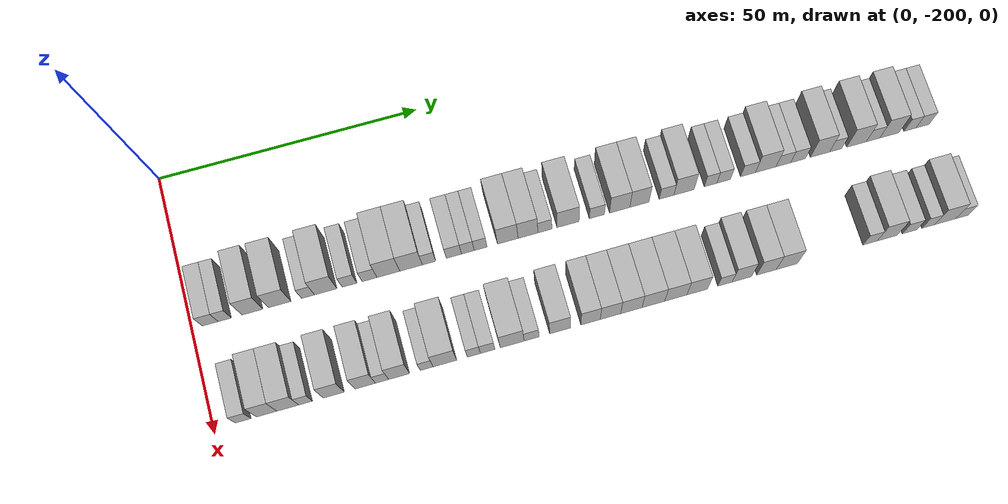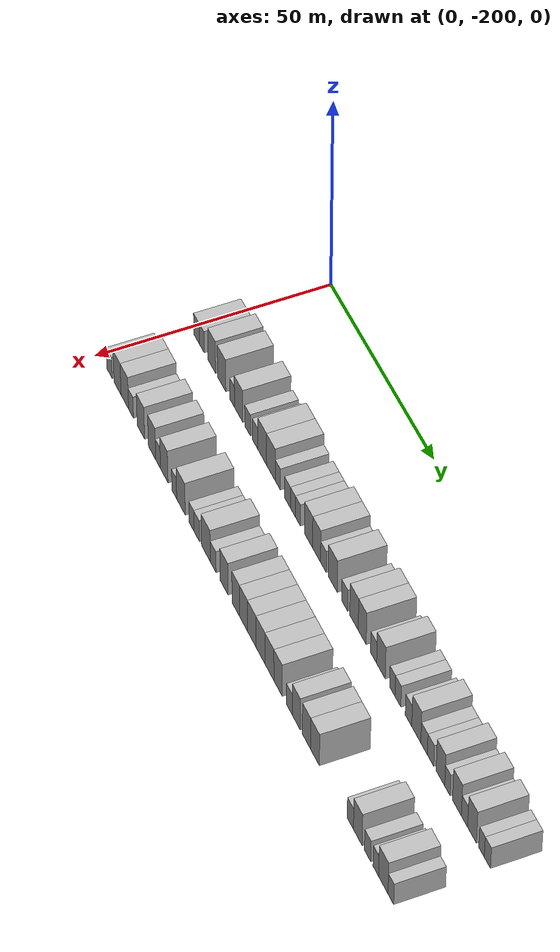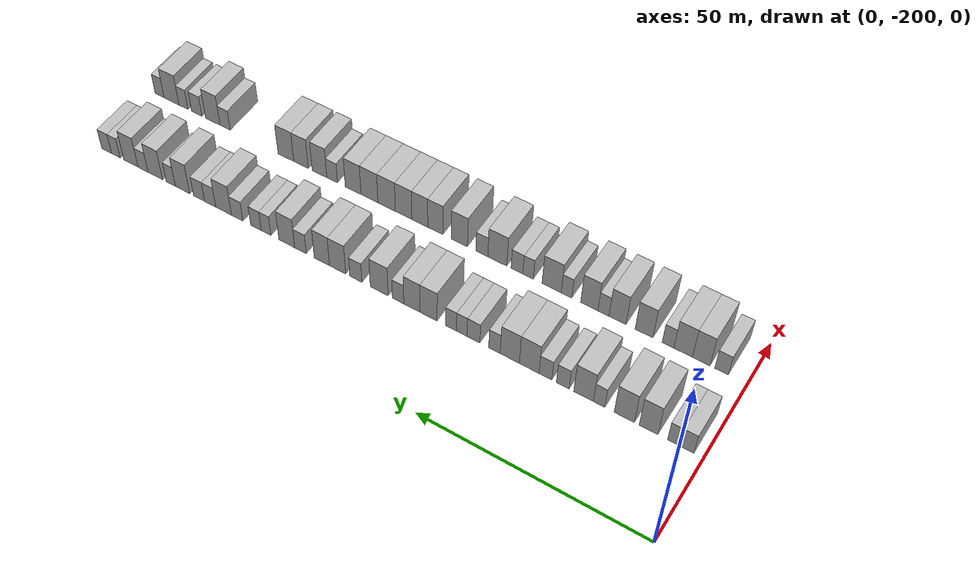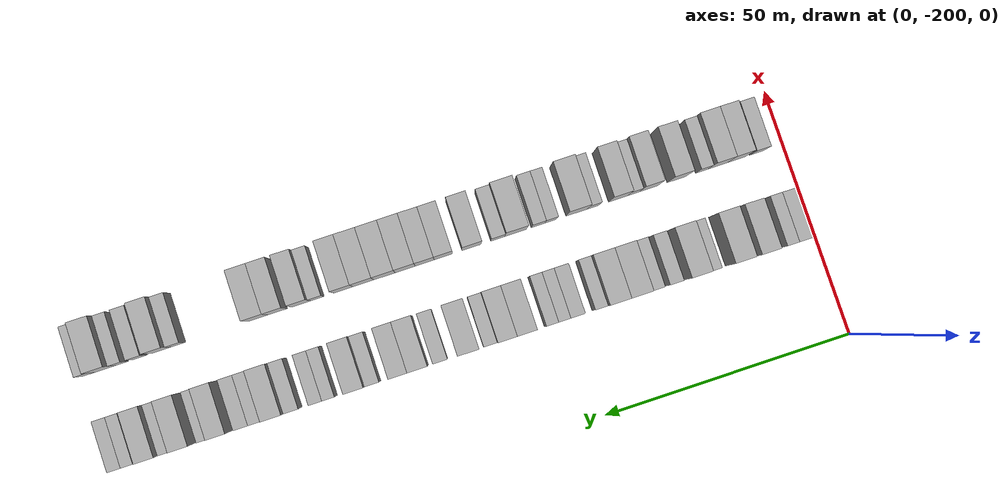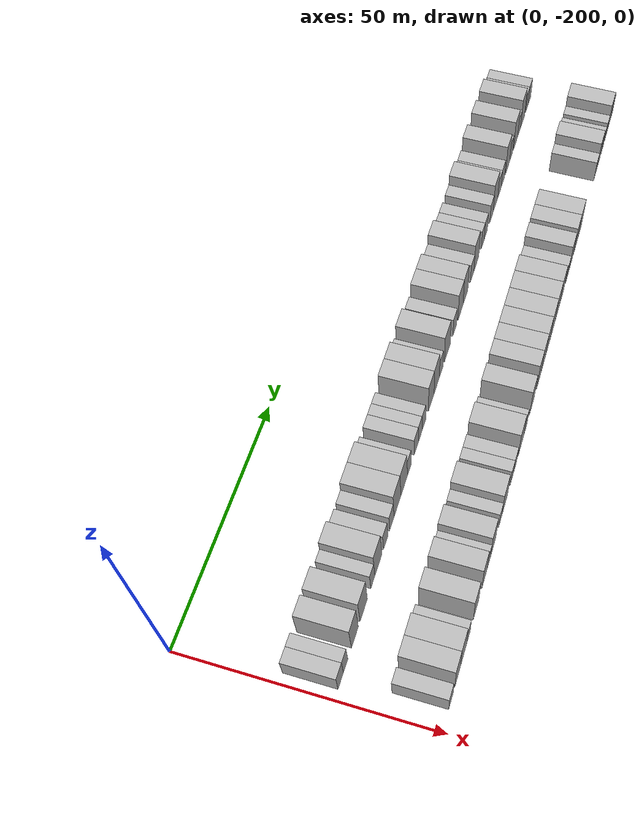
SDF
<sdf version="1.6">
 <world name="default">
  <model name="building_1">
   <static>1</static>
   <pose>25.0000 -196.5216 0 0.000000 0.000000 0.000000</pose>
   <link name="link">
    <pose>0 0 3.00 0 0 0</pose>
    <collision name="collision"><geometry><box><size>10.0000 2.9568 6.0000</size></box></geometry></collision>
    <visual name="visual">
     <cast_shadows>0</cast_shadows>
     <geometry><box><size>10.0000 2.9568 6.0000</size></box></geometry>
     <material>
      <script>
       <uri>model://HANNAS_wall/materials/scripts</uri>
       <uri>model://HANNAS_wall/materials/textures</uri>
       <name>vrc/HANNAS_wall</name>
      </script>
     </material>
    </visual>
   </link>
  </model>
  <model name="building_2">
   <static>1</static>
   <pose>25.0000 -193.8237 0 0.000000 0.000000 0.000000</pose>
   <link name="link">
    <pose>0 0 3.00 0 0 0</pose>
    <collision name="collision"><geometry><box><size>10.0000 2.4389 6.0000</size></box></geometry></collision>
    <visual name="visual">
     <cast_shadows>0</cast_shadows>
     <geometry><box><size>10.0000 2.4389 6.0000</size></box></geometry>
     <material>
      <script>
       <uri>model://HANNAS_wall/materials/scripts</uri>
       <uri>model://HANNAS_wall/materials/textures</uri>
       <name>vrc/HANNAS_wall</name>
      </script>
     </material>
    </visual>
   </link>
  </model>
  <model name="building_3">
   <static>1</static>
   <pose>25.0000 -188.6595 0 0.000000 0.000000 0.000000</pose>
   <link name="link">
    <pose>0 0 4.50 0 0 0</pose>
    <collision name="collision"><geometry><box><size>10.0000 3.8895 9.0000</size></box></geometry></collision>
    <visual name="visual">
     <cast_shadows>0</cast_shadows>
     <geometry><box><size>10.0000 3.8895 9.0000</size></box></geometry>
     <material>
      <script>
       <uri>model://HANNAS_wall/materials/scripts</uri>
       <uri>model://HANNAS_wall/materials/textures</uri>
       <name>vrc/HANNAS_wall</name>
      </script>
     </material>
    </visual>
   </link>
  </model>
  <model name="building_4">
   <static>1</static>
   <pose>25.0000 -183.5897 0 0.000000 0.000000 0.000000</pose>
   <link name="link">
    <pose>0 0 4.50 0 0 0</pose>
    <collision name="collision"><geometry><box><size>10.0000 4.2502 9.0000</size></box></geometry></collision>
    <visual name="visual">
     <cast_shadows>0</cast_shadows>
     <geometry><box><size>10.0000 4.2502 9.0000</size></box></geometry>
     <material>
      <script>
       <uri>model://HANNAS_wall/materials/scripts</uri>
       <uri>model://HANNAS_wall/materials/textures</uri>
       <name>vrc/HANNAS_wall</name>
      </script>
     </material>
    </visual>
   </link>
  </model>
  <model name="building_5">
   <static>1</static>
   <pose>25.0000 -178.2451 0 0.000000 0.000000 0.000000</pose>
   <link name="link">
    <pose>0 0 3.00 0 0 0</pose>
    <collision name="collision"><geometry><box><size>10.0000 2.4389 6.0000</size></box></geometry></collision>
    <visual name="visual">
     <cast_shadows>0</cast_shadows>
     <geometry><box><size>10.0000 2.4389 6.0000</size></box></geometry>
     <material>
      <script>
       <uri>model://HANNAS_wall/materials/scripts</uri>
       <uri>model://HANNAS_wall/materials/textures</uri>
       <name>vrc/HANNAS_wall</name>
      </script>
     </material>
    </visual>
   </link>
  </model>
  <model name="building_6">
   <static>1</static>
   <pose>25.0000 -174.9173 0 0.000000 0.000000 0.000000</pose>
   <link name="link">
    <pose>0 0 4.50 0 0 0</pose>
    <collision name="collision"><geometry><box><size>10.0000 4.2168 9.0000</size></box></geometry></collision>
    <visual name="visual">
     <cast_shadows>0</cast_shadows>
     <geometry><box><size>10.0000 4.2168 9.0000</size></box></geometry>
     <material>
      <script>
       <uri>model://HANNAS_wall/materials/scripts</uri>
       <uri>model://HANNAS_wall/materials/textures</uri>
       <name>vrc/HANNAS_wall</name>
      </script>
     </material>
    </visual>
   </link>
  </model>
  <model name="building_7">
   <static>1</static>
   <pose>25.0000 -170.4212 0 0.000000 0.000000 0.000000</pose>
   <link name="link">
    <pose>0 0 3.00 0 0 0</pose>
    <collision name="collision"><geometry><box><size>10.0000 2.7752 6.0000</size></box></geometry></collision>
    <visual name="visual">
     <cast_shadows>0</cast_shadows>
     <geometry><box><size>10.0000 2.7752 6.0000</size></box></geometry>
     <material>
      <script>
       <uri>model://HANNAS_wall/materials/scripts</uri>
       <uri>model://HANNAS_wall/materials/textures</uri>
       <name>vrc/HANNAS_wall</name>
      </script>
     </material>
    </visual>
   </link>
  </model>
  <model name="building_8">
   <static>1</static>
   <pose>25.0000 -166.6323 0 0.000000 0.000000 0.000000</pose>
   <link name="link">
    <pose>0 0 3.00 0 0 0</pose>
    <collision name="collision"><geometry><box><size>10.0000 2.8027 6.0000</size></box></geometry></collision>
    <visual name="visual">
     <cast_shadows>0</cast_shadows>
     <geometry><box><size>10.0000 2.8027 6.0000</size></box></geometry>
     <material>
      <script>
       <uri>model://HANNAS_wall/materials/scripts</uri>
       <uri>model://HANNAS_wall/materials/textures</uri>
       <name>vrc/HANNAS_wall</name>
      </script>
     </material>
    </visual>
   </link>
  </model>
  <model name="building_9">
   <static>1</static>
   <pose>25.0000 -163.0565 0 0.000000 0.000000 0.000000</pose>
   <link name="link">
    <pose>0 0 4.50 0 0 0</pose>
    <collision name="collision"><geometry><box><size>10.0000 4.3489 9.0000</size></box></geometry></collision>
    <visual name="visual">
     <cast_shadows>0</cast_shadows>
     <geometry><box><size>10.0000 4.3489 9.0000</size></box></geometry>
     <material>
      <script>
       <uri>model://HANNAS_wall/materials/scripts</uri>
       <uri>model://HANNAS_wall/materials/textures</uri>
       <name>vrc/HANNAS_wall</name>
      </script>
     </material>
    </visual>
   </link>
  </model>
  <model name="building_10">
   <static>1</static>
   <pose>25.0000 -158.7368 0 0.000000 0.000000 0.000000</pose>
   <link name="link">
    <pose>0 0 4.50 0 0 0</pose>
    <collision name="collision"><geometry><box><size>10.0000 4.2905 9.0000</size></box></geometry></collision>
    <visual name="visual">
     <cast_shadows>0</cast_shadows>
     <geometry><box><size>10.0000 4.2905 9.0000</size></box></geometry>
     <material>
      <script>
       <uri>model://HANNAS_wall/materials/scripts</uri>
       <uri>model://HANNAS_wall/materials/textures</uri>
       <name>vrc/HANNAS_wall</name>
      </script>
     </material>
    </visual>
   </link>
  </model>
  <model name="building_11">
   <static>1</static>
   <pose>25.0000 -155.3103 0 0.000000 0.000000 0.000000</pose>
   <link name="link">
    <pose>0 0 3.00 0 0 0</pose>
    <collision name="collision"><geometry><box><size>10.0000 2.5625 6.0000</size></box></geometry></collision>
    <visual name="visual">
     <cast_shadows>0</cast_shadows>
     <geometry><box><size>10.0000 2.5625 6.0000</size></box></geometry>
     <material>
      <script>
       <uri>model://HANNAS_wall/materials/scripts</uri>
       <uri>model://HANNAS_wall/materials/textures</uri>
       <name>vrc/HANNAS_wall</name>
      </script>
     </material>
    </visual>
   </link>
  </model>
  <model name="building_12">
   <static>1</static>
   <pose>25.0000 -150.5763 0 0.000000 0.000000 0.000000</pose>
   <link name="link">
    <pose>0 0 3.00 0 0 0</pose>
    <collision name="collision"><geometry><box><size>10.0000 2.9056 6.0000</size></box></geometry></collision>
    <visual name="visual">
     <cast_shadows>0</cast_shadows>
     <geometry><box><size>10.0000 2.9056 6.0000</size></box></geometry>
     <material>
      <script>
       <uri>model://HANNAS_wall/materials/scripts</uri>
       <uri>model://HANNAS_wall/materials/textures</uri>
       <name>vrc/HANNAS_wall</name>
      </script>
     </material>
    </visual>
   </link>
  </model>
  <model name="building_13">
   <static>1</static>
   <pose>25.0000 -147.9111 0 0.000000 0.000000 0.000000</pose>
   <link name="link">
    <pose>0 0 3.00 0 0 0</pose>
    <collision name="collision"><geometry><box><size>10.0000 2.4247 6.0000</size></box></geometry></collision>
    <visual name="visual">
     <cast_shadows>0</cast_shadows>
     <geometry><box><size>10.0000 2.4247 6.0000</size></box></geometry>
     <material>
      <script>
       <uri>model://HANNAS_wall/materials/scripts</uri>
       <uri>model://HANNAS_wall/materials/textures</uri>
       <name>vrc/HANNAS_wall</name>
      </script>
     </material>
    </visual>
   </link>
  </model>
  <model name="building_14">
   <static>1</static>
   <pose>25.0000 -145.4668 0 0.000000 0.000000 0.000000</pose>
   <link name="link">
    <pose>0 0 3.00 0 0 0</pose>
    <collision name="collision"><geometry><box><size>10.0000 2.4639 6.0000</size></box></geometry></collision>
    <visual name="visual">
     <cast_shadows>0</cast_shadows>
     <geometry><box><size>10.0000 2.4639 6.0000</size></box></geometry>
     <material>
      <script>
       <uri>model://HANNAS_wall/materials/scripts</uri>
       <uri>model://HANNAS_wall/materials/textures</uri>
       <name>vrc/HANNAS_wall</name>
      </script>
     </material>
    </visual>
   </link>
  </model>
  <model name="building_15">
   <static>1</static>
   <pose>25.0000 -140.2559 0 0.000000 0.000000 0.000000</pose>
   <link name="link">
    <pose>0 0 4.50 0 0 0</pose>
    <collision name="collision"><geometry><box><size>10.0000 3.9579 9.0000</size></box></geometry></collision>
    <visual name="visual">
     <cast_shadows>0</cast_shadows>
     <geometry><box><size>10.0000 3.9579 9.0000</size></box></geometry>
     <material>
      <script>
       <uri>model://HANNAS_wall/materials/scripts</uri>
       <uri>model://HANNAS_wall/materials/textures</uri>
       <name>vrc/HANNAS_wall</name>
      </script>
     </material>
    </visual>
   </link>
  </model>
  <model name="building_16">
   <static>1</static>
   <pose>25.0000 -136.3634 0 0.000000 0.000000 0.000000</pose>
   <link name="link">
    <pose>0 0 4.50 0 0 0</pose>
    <collision name="collision"><geometry><box><size>10.0000 3.8270 9.0000</size></box></geometry></collision>
    <visual name="visual">
     <cast_shadows>0</cast_shadows>
     <geometry><box><size>10.0000 3.8270 9.0000</size></box></geometry>
     <material>
      <script>
       <uri>model://HANNAS_wall/materials/scripts</uri>
       <uri>model://HANNAS_wall/materials/textures</uri>
       <name>vrc/HANNAS_wall</name>
      </script>
     </material>
    </visual>
   </link>
  </model>
  <model name="building_17">
   <static>1</static>
   <pose>25.0000 -133.1001 0 0.000000 0.000000 0.000000</pose>
   <link name="link">
    <pose>0 0 3.00 0 0 0</pose>
    <collision name="collision"><geometry><box><size>10.0000 2.6995 6.0000</size></box></geometry></collision>
    <visual name="visual">
     <cast_shadows>0</cast_shadows>
     <geometry><box><size>10.0000 2.6995 6.0000</size></box></geometry>
     <material>
      <script>
       <uri>model://HANNAS_wall/materials/scripts</uri>
       <uri>model://HANNAS_wall/materials/textures</uri>
       <name>vrc/HANNAS_wall</name>
      </script>
     </material>
    </visual>
   </link>
  </model>
  <model name="building_18">
   <static>1</static>
   <pose>25.0000 -128.6211 0 0.000000 0.000000 0.000000</pose>
   <link name="link">
    <pose>0 0 4.50 0 0 0</pose>
    <collision name="collision"><geometry><box><size>10.0000 4.2584 9.0000</size></box></geometry></collision>
    <visual name="visual">
     <cast_shadows>0</cast_shadows>
     <geometry><box><size>10.0000 4.2584 9.0000</size></box></geometry>
     <material>
      <script>
       <uri>model://HANNAS_wall/materials/scripts</uri>
       <uri>model://HANNAS_wall/materials/textures</uri>
       <name>vrc/HANNAS_wall</name>
      </script>
     </material>
    </visual>
   </link>
  </model>
  <model name="building_19">
   <static>1</static>
   <pose>25.0000 -123.0242 0 0.000000 0.000000 0.000000</pose>
   <link name="link">
    <pose>0 0 3.00 0 0 0</pose>
    <collision name="collision"><geometry><box><size>10.0000 2.9353 6.0000</size></box></geometry></collision>
    <visual name="visual">
     <cast_shadows>0</cast_shadows>
     <geometry><box><size>10.0000 2.9353 6.0000</size></box></geometry>
     <material>
      <script>
       <uri>model://HANNAS_wall/materials/scripts</uri>
       <uri>model://HANNAS_wall/materials/textures</uri>
       <name>vrc/HANNAS_wall</name>
      </script>
     </material>
    </visual>
   </link>
  </model>
  <model name="building_20">
   <static>1</static>
   <pose>25.0000 -118.5763 0 0.000000 0.000000 0.000000</pose>
   <link name="link">
    <pose>0 0 4.50 0 0 0</pose>
    <collision name="collision"><geometry><box><size>10.0000 3.9605 9.0000</size></box></geometry></collision>
    <visual name="visual">
     <cast_shadows>0</cast_shadows>
     <geometry><box><size>10.0000 3.9605 9.0000</size></box></geometry>
     <material>
      <script>
       <uri>model://HANNAS_wall/materials/scripts</uri>
       <uri>model://HANNAS_wall/materials/textures</uri>
       <name>vrc/HANNAS_wall</name>
      </script>
     </material>
    </visual>
   </link>
  </model>
  <model name="building_21">
   <static>1</static>
   <pose>25.0000 -114.7280 0 0.000000 0.000000 0.000000</pose>
   <link name="link">
    <pose>0 0 4.50 0 0 0</pose>
    <collision name="collision"><geometry><box><size>10.0000 3.7361 9.0000</size></box></geometry></collision>
    <visual name="visual">
     <cast_shadows>0</cast_shadows>
     <geometry><box><size>10.0000 3.7361 9.0000</size></box></geometry>
     <material>
      <script>
       <uri>model://HANNAS_wall/materials/scripts</uri>
       <uri>model://HANNAS_wall/materials/textures</uri>
       <name>vrc/HANNAS_wall</name>
      </script>
     </material>
    </visual>
   </link>
  </model>
  <model name="building_22">
   <static>1</static>
   <pose>25.0000 -109.4225 0 0.000000 0.000000 0.000000</pose>
   <link name="link">
    <pose>0 0 3.00 0 0 0</pose>
    <collision name="collision"><geometry><box><size>10.0000 2.8748 6.0000</size></box></geometry></collision>
    <visual name="visual">
     <cast_shadows>0</cast_shadows>
     <geometry><box><size>10.0000 2.8748 6.0000</size></box></geometry>
     <material>
      <script>
       <uri>model://HANNAS_wall/materials/scripts</uri>
       <uri>model://HANNAS_wall/materials/textures</uri>
       <name>vrc/HANNAS_wall</name>
      </script>
     </material>
    </visual>
   </link>
  </model>
  <model name="building_23">
   <static>1</static>
   <pose>25.0000 -106.0027 0 0.000000 0.000000 0.000000</pose>
   <link name="link">
    <pose>0 0 4.50 0 0 0</pose>
    <collision name="collision"><geometry><box><size>10.0000 3.9648 9.0000</size></box></geometry></collision>
    <visual name="visual">
     <cast_shadows>0</cast_shadows>
     <geometry><box><size>10.0000 3.9648 9.0000</size></box></geometry>
     <material>
      <script>
       <uri>model://HANNAS_wall/materials/scripts</uri>
       <uri>model://HANNAS_wall/materials/textures</uri>
       <name>vrc/HANNAS_wall</name>
      </script>
     </material>
    </visual>
   </link>
  </model>
  <model name="building_24">
   <static>1</static>
   <pose>25.0000 -100.7795 0 0.000000 0.000000 0.000000</pose>
   <link name="link">
    <pose>0 0 3.00 0 0 0</pose>
    <collision name="collision"><geometry><box><size>10.0000 2.4816 6.0000</size></box></geometry></collision>
    <visual name="visual">
     <cast_shadows>0</cast_shadows>
     <geometry><box><size>10.0000 2.4816 6.0000</size></box></geometry>
     <material>
      <script>
       <uri>model://HANNAS_wall/materials/scripts</uri>
       <uri>model://HANNAS_wall/materials/textures</uri>
       <name>vrc/HANNAS_wall</name>
      </script>
     </material>
    </visual>
   </link>
  </model>
  <model name="building_25">
   <static>1</static>
   <pose>25.0000 -98.1952 0 0.000000 0.000000 0.000000</pose>
   <link name="link">
    <pose>0 0 3.00 0 0 0</pose>
    <collision name="collision"><geometry><box><size>10.0000 2.6870 6.0000</size></box></geometry></collision>
    <visual name="visual">
     <cast_shadows>0</cast_shadows>
     <geometry><box><size>10.0000 2.6870 6.0000</size></box></geometry>
     <material>
      <script>
       <uri>model://HANNAS_wall/materials/scripts</uri>
       <uri>model://HANNAS_wall/materials/textures</uri>
       <name>vrc/HANNAS_wall</name>
      </script>
     </material>
    </visual>
   </link>
  </model>
  <model name="building_26">
   <static>1</static>
   <pose>25.0000 -93.3757 0 0.000000 0.000000 0.000000</pose>
   <link name="link">
    <pose>0 0 3.00 0 0 0</pose>
    <collision name="collision"><geometry><box><size>10.0000 2.9520 6.0000</size></box></geometry></collision>
    <visual name="visual">
     <cast_shadows>0</cast_shadows>
     <geometry><box><size>10.0000 2.9520 6.0000</size></box></geometry>
     <material>
      <script>
       <uri>model://HANNAS_wall/materials/scripts</uri>
       <uri>model://HANNAS_wall/materials/textures</uri>
       <name>vrc/HANNAS_wall</name>
      </script>
     </material>
    </visual>
   </link>
  </model>
  <model name="building_27">
   <static>1</static>
   <pose>25.0000 -89.8554 0 0.000000 0.000000 0.000000</pose>
   <link name="link">
    <pose>0 0 4.50 0 0 0</pose>
    <collision name="collision"><geometry><box><size>10.0000 4.0886 9.0000</size></box></geometry></collision>
    <visual name="visual">
     <cast_shadows>0</cast_shadows>
     <geometry><box><size>10.0000 4.0886 9.0000</size></box></geometry>
     <material>
      <script>
       <uri>model://HANNAS_wall/materials/scripts</uri>
       <uri>model://HANNAS_wall/materials/textures</uri>
       <name>vrc/HANNAS_wall</name>
      </script>
     </material>
    </visual>
   </link>
  </model>
  <model name="building_28">
   <static>1</static>
   <pose>25.0000 -86.3526 0 0.000000 0.000000 0.000000</pose>
   <link name="link">
    <pose>0 0 3.00 0 0 0</pose>
    <collision name="collision"><geometry><box><size>10.0000 2.9172 6.0000</size></box></geometry></collision>
    <visual name="visual">
     <cast_shadows>0</cast_shadows>
     <geometry><box><size>10.0000 2.9172 6.0000</size></box></geometry>
     <material>
      <script>
       <uri>model://HANNAS_wall/materials/scripts</uri>
       <uri>model://HANNAS_wall/materials/textures</uri>
       <name>vrc/HANNAS_wall</name>
      </script>
     </material>
    </visual>
   </link>
  </model>
  <model name="building_29">
   <static>1</static>
   <pose>25.0000 -83.4376 0 0.000000 0.000000 0.000000</pose>
   <link name="link">
    <pose>0 0 3.00 0 0 0</pose>
    <collision name="collision"><geometry><box><size>10.0000 2.9129 6.0000</size></box></geometry></collision>
    <visual name="visual">
     <cast_shadows>0</cast_shadows>
     <geometry><box><size>10.0000 2.9129 6.0000</size></box></geometry>
     <material>
      <script>
       <uri>model://HANNAS_wall/materials/scripts</uri>
       <uri>model://HANNAS_wall/materials/textures</uri>
       <name>vrc/HANNAS_wall</name>
      </script>
     </material>
    </visual>
   </link>
  </model>
  <model name="building_30">
   <static>1</static>
   <pose>25.0000 -79.0582 0 0.000000 0.000000 0.000000</pose>
   <link name="link">
    <pose>0 0 4.50 0 0 0</pose>
    <collision name="collision"><geometry><box><size>10.0000 3.8459 9.0000</size></box></geometry></collision>
    <visual name="visual">
     <cast_shadows>0</cast_shadows>
     <geometry><box><size>10.0000 3.8459 9.0000</size></box></geometry>
     <material>
      <script>
       <uri>model://HANNAS_wall/materials/scripts</uri>
       <uri>model://HANNAS_wall/materials/textures</uri>
       <name>vrc/HANNAS_wall</name>
      </script>
     </material>
    </visual>
   </link>
  </model>
  <model name="building_31">
   <static>1</static>
   <pose>25.0000 -75.9244 0 0.000000 0.000000 0.000000</pose>
   <link name="link">
    <pose>0 0 3.00 0 0 0</pose>
    <collision name="collision"><geometry><box><size>10.0000 2.4217 6.0000</size></box></geometry></collision>
    <visual name="visual">
     <cast_shadows>0</cast_shadows>
     <geometry><box><size>10.0000 2.4217 6.0000</size></box></geometry>
     <material>
      <script>
       <uri>model://HANNAS_wall/materials/scripts</uri>
       <uri>model://HANNAS_wall/materials/textures</uri>
       <name>vrc/HANNAS_wall</name>
      </script>
     </material>
    </visual>
   </link>
  </model>
  <model name="building_32">
   <static>1</static>
   <pose>25.0000 -71.7508 0 0.000000 0.000000 0.000000</pose>
   <link name="link">
    <pose>0 0 4.50 0 0 0</pose>
    <collision name="collision"><geometry><box><size>10.0000 3.9255 9.0000</size></box></geometry></collision>
    <visual name="visual">
     <cast_shadows>0</cast_shadows>
     <geometry><box><size>10.0000 3.9255 9.0000</size></box></geometry>
     <material>
      <script>
       <uri>model://HANNAS_wall/materials/scripts</uri>
       <uri>model://HANNAS_wall/materials/textures</uri>
       <name>vrc/HANNAS_wall</name>
      </script>
     </material>
    </visual>
   </link>
  </model>
  <model name="building_33">
   <static>1</static>
   <pose>25.0000 -68.4261 0 0.000000 0.000000 0.000000</pose>
   <link name="link">
    <pose>0 0 3.00 0 0 0</pose>
    <collision name="collision"><geometry><box><size>10.0000 2.7239 6.0000</size></box></geometry></collision>
    <visual name="visual">
     <cast_shadows>0</cast_shadows>
     <geometry><box><size>10.0000 2.7239 6.0000</size></box></geometry>
     <material>
      <script>
       <uri>model://HANNAS_wall/materials/scripts</uri>
       <uri>model://HANNAS_wall/materials/textures</uri>
       <name>vrc/HANNAS_wall</name>
      </script>
     </material>
    </visual>
   </link>
  </model>
  <model name="building_34">
   <static>1</static>
   <pose>25.0000 -65.1270 0 0.000000 0.000000 0.000000</pose>
   <link name="link">
    <pose>0 0 4.50 0 0 0</pose>
    <collision name="collision"><geometry><box><size>10.0000 3.8743 9.0000</size></box></geometry></collision>
    <visual name="visual">
     <cast_shadows>0</cast_shadows>
     <geometry><box><size>10.0000 3.8743 9.0000</size></box></geometry>
     <material>
      <script>
       <uri>model://HANNAS_wall/materials/scripts</uri>
       <uri>model://HANNAS_wall/materials/textures</uri>
       <name>vrc/HANNAS_wall</name>
      </script>
     </material>
    </visual>
   </link>
  </model>
  <model name="building_35">
   <static>1</static>
   <pose>25.0000 -60.9822 0 0.000000 0.000000 0.000000</pose>
   <link name="link">
    <pose>0 0 3.00 0 0 0</pose>
    <collision name="collision"><geometry><box><size>10.0000 2.4153 6.0000</size></box></geometry></collision>
    <visual name="visual">
     <cast_shadows>0</cast_shadows>
     <geometry><box><size>10.0000 2.4153 6.0000</size></box></geometry>
     <material>
      <script>
       <uri>model://HANNAS_wall/materials/scripts</uri>
       <uri>model://HANNAS_wall/materials/textures</uri>
       <name>vrc/HANNAS_wall</name>
      </script>
     </material>
    </visual>
   </link>
  </model>
  <model name="building_36">
   <static>1</static>
   <pose>25.0000 -58.4385 0 0.000000 0.000000 0.000000</pose>
   <link name="link">
    <pose>0 0 3.00 0 0 0</pose>
    <collision name="collision"><geometry><box><size>10.0000 2.6722 6.0000</size></box></geometry></collision>
    <visual name="visual">
     <cast_shadows>0</cast_shadows>
     <geometry><box><size>10.0000 2.6722 6.0000</size></box></geometry>
     <material>
      <script>
       <uri>model://HANNAS_wall/materials/scripts</uri>
       <uri>model://HANNAS_wall/materials/textures</uri>
       <name>vrc/HANNAS_wall</name>
      </script>
     </material>
    </visual>
   </link>
  </model>
  <model name="building_104">
   <static>1</static>
   <pose>44.0000 -194.5678 0 0.000000 0.000000 0.000000</pose>
   <link name="link">
    <pose>0 0 3.00 0 0 0</pose>
    <collision name="collision"><geometry><box><size>10.0000 2.8644 6.0000</size></box></geometry></collision>
    <visual name="visual">
     <cast_shadows>0</cast_shadows>
     <geometry><box><size>10.0000 2.8644 6.0000</size></box></geometry>
     <material>
      <script>
       <uri>model://HANNAS_wall/materials/scripts</uri>
       <uri>model://HANNAS_wall/materials/textures</uri>
       <name>vrc/HANNAS_wall</name>
      </script>
     </material>
    </visual>
   </link>
  </model>
  <model name="building_105">
   <static>1</static>
   <pose>44.0000 -190.2650 0 0.000000 0.000000 0.000000</pose>
   <link name="link">
    <pose>0 0 4.50 0 0 0</pose>
    <collision name="collision"><geometry><box><size>10.0000 3.7413 9.0000</size></box></geometry></collision>
    <visual name="visual">
     <cast_shadows>0</cast_shadows>
     <geometry><box><size>10.0000 3.7413 9.0000</size></box></geometry>
     <material>
      <script>
       <uri>model://HANNAS_wall/materials/scripts</uri>
       <uri>model://HANNAS_wall/materials/textures</uri>
       <name>vrc/HANNAS_wall</name>
      </script>
     </material>
    </visual>
   </link>
  </model>
  <model name="building_106">
   <static>1</static>
   <pose>44.0000 -186.4060 0 0.000000 0.000000 0.000000</pose>
   <link name="link">
    <pose>0 0 4.50 0 0 0</pose>
    <collision name="collision"><geometry><box><size>10.0000 3.9766 9.0000</size></box></geometry></collision>
    <visual name="visual">
     <cast_shadows>0</cast_shadows>
     <geometry><box><size>10.0000 3.9766 9.0000</size></box></geometry>
     <material>
      <script>
       <uri>model://HANNAS_wall/materials/scripts</uri>
       <uri>model://HANNAS_wall/materials/textures</uri>
       <name>vrc/HANNAS_wall</name>
      </script>
     </material>
    </visual>
   </link>
  </model>
  <model name="building_107">
   <static>1</static>
   <pose>44.0000 -183.1591 0 0.000000 0.000000 0.000000</pose>
   <link name="link">
    <pose>0 0 3.00 0 0 0</pose>
    <collision name="collision"><geometry><box><size>10.0000 2.5173 6.0000</size></box></geometry></collision>
    <visual name="visual">
     <cast_shadows>0</cast_shadows>
     <geometry><box><size>10.0000 2.5173 6.0000</size></box></geometry>
     <material>
      <script>
       <uri>model://HANNAS_wall/materials/scripts</uri>
       <uri>model://HANNAS_wall/materials/textures</uri>
       <name>vrc/HANNAS_wall</name>
      </script>
     </material>
    </visual>
   </link>
  </model>
  <model name="building_108">
   <static>1</static>
   <pose>44.0000 -177.9557 0 0.000000 0.000000 0.000000</pose>
   <link name="link">
    <pose>0 0 4.50 0 0 0</pose>
    <collision name="collision"><geometry><box><size>10.0000 3.8895 9.0000</size></box></geometry></collision>
    <visual name="visual">
     <cast_shadows>0</cast_shadows>
     <geometry><box><size>10.0000 3.8895 9.0000</size></box></geometry>
     <material>
      <script>
       <uri>model://HANNAS_wall/materials/scripts</uri>
       <uri>model://HANNAS_wall/materials/textures</uri>
       <name>vrc/HANNAS_wall</name>
      </script>
     </material>
    </visual>
   </link>
  </model>
  <model name="building_109">
   <static>1</static>
   <pose>44.0000 -172.1191 0 0.000000 0.000000 0.000000</pose>
   <link name="link">
    <pose>0 0 4.50 0 0 0</pose>
    <collision name="collision"><geometry><box><size>10.0000 3.7837 9.0000</size></box></geometry></collision>
    <visual name="visual">
     <cast_shadows>0</cast_shadows>
     <geometry><box><size>10.0000 3.7837 9.0000</size></box></geometry>
     <material>
      <script>
       <uri>model://HANNAS_wall/materials/scripts</uri>
       <uri>model://HANNAS_wall/materials/textures</uri>
       <name>vrc/HANNAS_wall</name>
      </script>
     </material>
    </visual>
   </link>
  </model>
  <model name="building_110">
   <static>1</static>
   <pose>44.0000 -169.0047 0 0.000000 0.000000 0.000000</pose>
   <link name="link">
    <pose>0 0 3.00 0 0 0</pose>
    <collision name="collision"><geometry><box><size>10.0000 2.4449 6.0000</size></box></geometry></collision>
    <visual name="visual">
     <cast_shadows>0</cast_shadows>
     <geometry><box><size>10.0000 2.4449 6.0000</size></box></geometry>
     <material>
      <script>
       <uri>model://HANNAS_wall/materials/scripts</uri>
       <uri>model://HANNAS_wall/materials/textures</uri>
       <name>vrc/HANNAS_wall</name>
      </script>
     </material>
    </visual>
   </link>
  </model>
  <model name="building_111">
   <static>1</static>
   <pose>44.0000 -165.8412 0 0.000000 0.000000 0.000000</pose>
   <link name="link">
    <pose>0 0 4.50 0 0 0</pose>
    <collision name="collision"><geometry><box><size>10.0000 3.8822 9.0000</size></box></geometry></collision>
    <visual name="visual">
     <cast_shadows>0</cast_shadows>
     <geometry><box><size>10.0000 3.8822 9.0000</size></box></geometry>
     <material>
      <script>
       <uri>model://HANNAS_wall/materials/scripts</uri>
       <uri>model://HANNAS_wall/materials/textures</uri>
       <name>vrc/HANNAS_wall</name>
      </script>
     </material>
    </visual>
   </link>
  </model>
  <model name="building_112">
   <static>1</static>
   <pose>44.0000 -160.6956 0 0.000000 0.000000 0.000000</pose>
   <link name="link">
    <pose>0 0 3.00 0 0 0</pose>
    <collision name="collision"><geometry><box><size>10.0000 2.4089 6.0000</size></box></geometry></collision>
    <visual name="visual">
     <cast_shadows>0</cast_shadows>
     <geometry><box><size>10.0000 2.4089 6.0000</size></box></geometry>
     <material>
      <script>
       <uri>model://HANNAS_wall/materials/scripts</uri>
       <uri>model://HANNAS_wall/materials/textures</uri>
       <name>vrc/HANNAS_wall</name>
      </script>
     </material>
    </visual>
   </link>
  </model>
  <model name="building_113">
   <static>1</static>
   <pose>44.0000 -157.2972 0 0.000000 0.000000 0.000000</pose>
   <link name="link">
    <pose>0 0 4.50 0 0 0</pose>
    <collision name="collision"><geometry><box><size>10.0000 4.3879 9.0000</size></box></geometry></collision>
    <visual name="visual">
     <cast_shadows>0</cast_shadows>
     <geometry><box><size>10.0000 4.3879 9.0000</size></box></geometry>
     <material>
      <script>
       <uri>model://HANNAS_wall/materials/scripts</uri>
       <uri>model://HANNAS_wall/materials/textures</uri>
       <name>vrc/HANNAS_wall</name>
      </script>
     </material>
    </visual>
   </link>
  </model>
  <model name="building_114">
   <static>1</static>
   <pose>44.0000 -151.8890 0 0.000000 0.000000 0.000000</pose>
   <link name="link">
    <pose>0 0 3.00 0 0 0</pose>
    <collision name="collision"><geometry><box><size>10.0000 2.4285 6.0000</size></box></geometry></collision>
    <visual name="visual">
     <cast_shadows>0</cast_shadows>
     <geometry><box><size>10.0000 2.4285 6.0000</size></box></geometry>
     <material>
      <script>
       <uri>model://HANNAS_wall/materials/scripts</uri>
       <uri>model://HANNAS_wall/materials/textures</uri>
       <name>vrc/HANNAS_wall</name>
      </script>
     </material>
    </visual>
   </link>
  </model>
  <model name="building_115">
   <static>1</static>
   <pose>44.0000 -149.3072 0 0.000000 0.000000 0.000000</pose>
   <link name="link">
    <pose>0 0 3.00 0 0 0</pose>
    <collision name="collision"><geometry><box><size>10.0000 2.7352 6.0000</size></box></geometry></collision>
    <visual name="visual">
     <cast_shadows>0</cast_shadows>
     <geometry><box><size>10.0000 2.7352 6.0000</size></box></geometry>
     <material>
      <script>
       <uri>model://HANNAS_wall/materials/scripts</uri>
       <uri>model://HANNAS_wall/materials/textures</uri>
       <name>vrc/HANNAS_wall</name>
      </script>
     </material>
    </visual>
   </link>
  </model>
  <model name="building_116">
   <static>1</static>
   <pose>44.0000 -144.6961 0 0.000000 0.000000 0.000000</pose>
   <link name="link">
    <pose>0 0 4.50 0 0 0</pose>
    <collision name="collision"><geometry><box><size>10.0000 4.4870 9.0000</size></box></geometry></collision>
    <visual name="visual">
     <cast_shadows>0</cast_shadows>
     <geometry><box><size>10.0000 4.4870 9.0000</size></box></geometry>
     <material>
      <script>
       <uri>model://HANNAS_wall/materials/scripts</uri>
       <uri>model://HANNAS_wall/materials/textures</uri>
       <name>vrc/HANNAS_wall</name>
      </script>
     </material>
    </visual>
   </link>
  </model>
  <model name="building_117">
   <static>1</static>
   <pose>44.0000 -141.0390 0 0.000000 0.000000 0.000000</pose>
   <link name="link">
    <pose>0 0 3.00 0 0 0</pose>
    <collision name="collision"><geometry><box><size>10.0000 2.8272 6.0000</size></box></geometry></collision>
    <visual name="visual">
     <cast_shadows>0</cast_shadows>
     <geometry><box><size>10.0000 2.8272 6.0000</size></box></geometry>
     <material>
      <script>
       <uri>model://HANNAS_wall/materials/scripts</uri>
       <uri>model://HANNAS_wall/materials/textures</uri>
       <name>vrc/HANNAS_wall</name>
      </script>
     </material>
    </visual>
   </link>
  </model>
  <model name="building_118">
   <static>1</static>
   <pose>44.0000 -135.6671 0 0.000000 0.000000 0.000000</pose>
   <link name="link">
    <pose>0 0 4.50 0 0 0</pose>
    <collision name="collision"><geometry><box><size>10.0000 3.9167 9.0000</size></box></geometry></collision>
    <visual name="visual">
     <cast_shadows>0</cast_shadows>
     <geometry><box><size>10.0000 3.9167 9.0000</size></box></geometry>
     <material>
      <script>
       <uri>model://HANNAS_wall/materials/scripts</uri>
       <uri>model://HANNAS_wall/materials/textures</uri>
       <name>vrc/HANNAS_wall</name>
      </script>
     </material>
    </visual>
   </link>
  </model>
  <model name="building_119">
   <static>1</static>
   <pose>44.0000 -129.8688 0 0.000000 0.000000 0.000000</pose>
   <link name="link">
    <pose>0 0 4.50 0 0 0</pose>
    <collision name="collision"><geometry><box><size>10.0000 3.6798 9.0000</size></box></geometry></collision>
    <visual name="visual">
     <cast_shadows>0</cast_shadows>
     <geometry><box><size>10.0000 3.6798 9.0000</size></box></geometry>
     <material>
      <script>
       <uri>model://HANNAS_wall/materials/scripts</uri>
       <uri>model://HANNAS_wall/materials/textures</uri>
       <name>vrc/HANNAS_wall</name>
      </script>
     </material>
    </visual>
   </link>
  </model>
  <model name="building_120">
   <static>1</static>
   <pose>44.0000 -126.0909 0 0.000000 0.000000 0.000000</pose>
   <link name="link">
    <pose>0 0 4.50 0 0 0</pose>
    <collision name="collision"><geometry><box><size>10.0000 3.8760 9.0000</size></box></geometry></collision>
    <visual name="visual">
     <cast_shadows>0</cast_shadows>
     <geometry><box><size>10.0000 3.8760 9.0000</size></box></geometry>
     <material>
      <script>
       <uri>model://HANNAS_wall/materials/scripts</uri>
       <uri>model://HANNAS_wall/materials/textures</uri>
       <name>vrc/HANNAS_wall</name>
      </script>
     </material>
    </visual>
   </link>
  </model>
  <model name="building_121">
   <static>1</static>
   <pose>44.0000 -122.1092 0 0.000000 0.000000 0.000000</pose>
   <link name="link">
    <pose>0 0 4.50 0 0 0</pose>
    <collision name="collision"><geometry><box><size>10.0000 4.0874 9.0000</size></box></geometry></collision>
    <visual name="visual">
     <cast_shadows>0</cast_shadows>
     <geometry><box><size>10.0000 4.0874 9.0000</size></box></geometry>
     <material>
      <script>
       <uri>model://HANNAS_wall/materials/scripts</uri>
       <uri>model://HANNAS_wall/materials/textures</uri>
       <name>vrc/HANNAS_wall</name>
      </script>
     </material>
    </visual>
   </link>
  </model>
  <model name="building_122">
   <static>1</static>
   <pose>44.0000 -117.8953 0 0.000000 0.000000 0.000000</pose>
   <link name="link">
    <pose>0 0 4.50 0 0 0</pose>
    <collision name="collision"><geometry><box><size>10.0000 4.3404 9.0000</size></box></geometry></collision>
    <visual name="visual">
     <cast_shadows>0</cast_shadows>
     <geometry><box><size>10.0000 4.3404 9.0000</size></box></geometry>
     <material>
      <script>
       <uri>model://HANNAS_wall/materials/scripts</uri>
       <uri>model://HANNAS_wall/materials/textures</uri>
       <name>vrc/HANNAS_wall</name>
      </script>
     </material>
    </visual>
   </link>
  </model>
  <model name="building_123">
   <static>1</static>
   <pose>44.0000 -113.5906 0 0.000000 0.000000 0.000000</pose>
   <link name="link">
    <pose>0 0 4.50 0 0 0</pose>
    <collision name="collision"><geometry><box><size>10.0000 4.2691 9.0000</size></box></geometry></collision>
    <visual name="visual">
     <cast_shadows>0</cast_shadows>
     <geometry><box><size>10.0000 4.2691 9.0000</size></box></geometry>
     <material>
      <script>
       <uri>model://HANNAS_wall/materials/scripts</uri>
       <uri>model://HANNAS_wall/materials/textures</uri>
       <name>vrc/HANNAS_wall</name>
      </script>
     </material>
    </visual>
   </link>
  </model>
  <model name="building_124">
   <static>1</static>
   <pose>44.0000 -109.4698 0 0.000000 0.000000 0.000000</pose>
   <link name="link">
    <pose>0 0 4.50 0 0 0</pose>
    <collision name="collision"><geometry><box><size>10.0000 3.9725 9.0000</size></box></geometry></collision>
    <visual name="visual">
     <cast_shadows>0</cast_shadows>
     <geometry><box><size>10.0000 3.9725 9.0000</size></box></geometry>
     <material>
      <script>
       <uri>model://HANNAS_wall/materials/scripts</uri>
       <uri>model://HANNAS_wall/materials/textures</uri>
       <name>vrc/HANNAS_wall</name>
      </script>
     </material>
    </visual>
   </link>
  </model>
  <model name="building_125">
   <static>1</static>
   <pose>44.0000 -104.1198 0 0.000000 0.000000 0.000000</pose>
   <link name="link">
    <pose>0 0 3.00 0 0 0</pose>
    <collision name="collision"><geometry><box><size>10.0000 2.7274 6.0000</size></box></geometry></collision>
    <visual name="visual">
     <cast_shadows>0</cast_shadows>
     <geometry><box><size>10.0000 2.7274 6.0000</size></box></geometry>
     <material>
      <script>
       <uri>model://HANNAS_wall/materials/scripts</uri>
       <uri>model://HANNAS_wall/materials/textures</uri>
       <name>vrc/HANNAS_wall</name>
      </script>
     </material>
    </visual>
   </link>
  </model>
  <model name="building_126">
   <static>1</static>
   <pose>44.0000 -100.8666 0 0.000000 0.000000 0.000000</pose>
   <link name="link">
    <pose>0 0 4.50 0 0 0</pose>
    <collision name="collision"><geometry><box><size>10.0000 3.7791 9.0000</size></box></geometry></collision>
    <visual name="visual">
     <cast_shadows>0</cast_shadows>
     <geometry><box><size>10.0000 3.7791 9.0000</size></box></geometry>
     <material>
      <script>
       <uri>model://HANNAS_wall/materials/scripts</uri>
       <uri>model://HANNAS_wall/materials/textures</uri>
       <name>vrc/HANNAS_wall</name>
      </script>
     </material>
    </visual>
   </link>
  </model>
  <model name="building_127">
   <static>1</static>
   <pose>44.0000 -96.0746 0 0.000000 0.000000 0.000000</pose>
   <link name="link">
    <pose>0 0 4.50 0 0 0</pose>
    <collision name="collision"><geometry><box><size>10.0000 3.8049 9.0000</size></box></geometry></collision>
    <visual name="visual">
     <cast_shadows>0</cast_shadows>
     <geometry><box><size>10.0000 3.8049 9.0000</size></box></geometry>
     <material>
      <script>
       <uri>model://HANNAS_wall/materials/scripts</uri>
       <uri>model://HANNAS_wall/materials/textures</uri>
       <name>vrc/HANNAS_wall</name>
      </script>
     </material>
    </visual>
   </link>
  </model>
  <model name="building_128">
   <static>1</static>
   <pose>44.0000 -92.1124 0 0.000000 0.000000 0.000000</pose>
   <link name="link">
    <pose>0 0 4.50 0 0 0</pose>
    <collision name="collision"><geometry><box><size>10.0000 4.1195 9.0000</size></box></geometry></collision>
    <visual name="visual">
     <cast_shadows>0</cast_shadows>
     <geometry><box><size>10.0000 4.1195 9.0000</size></box></geometry>
     <material>
      <script>
       <uri>model://HANNAS_wall/materials/scripts</uri>
       <uri>model://HANNAS_wall/materials/textures</uri>
       <name>vrc/HANNAS_wall</name>
      </script>
     </material>
    </visual>
   </link>
  </model>
  <model name="building_129">
   <static>1</static>
   <pose>44.0000 -75.8400 0 0.000000 0.000000 0.000000</pose>
   <link name="link">
    <pose>0 0 3.00 0 0 0</pose>
    <collision name="collision"><geometry><box><size>10.0000 2.8085 6.0000</size></box></geometry></collision>
    <visual name="visual">
     <cast_shadows>0</cast_shadows>
     <geometry><box><size>10.0000 2.8085 6.0000</size></box></geometry>
     <material>
      <script>
       <uri>model://HANNAS_wall/materials/scripts</uri>
       <uri>model://HANNAS_wall/materials/textures</uri>
       <name>vrc/HANNAS_wall</name>
      </script>
     </material>
    </visual>
   </link>
  </model>
  <model name="building_130">
   <static>1</static>
   <pose>44.0000 -72.4614 0 0.000000 0.000000 0.000000</pose>
   <link name="link">
    <pose>0 0 4.50 0 0 0</pose>
    <collision name="collision"><geometry><box><size>10.0000 3.9486 9.0000</size></box></geometry></collision>
    <visual name="visual">
     <cast_shadows>0</cast_shadows>
     <geometry><box><size>10.0000 3.9486 9.0000</size></box></geometry>
     <material>
      <script>
       <uri>model://HANNAS_wall/materials/scripts</uri>
       <uri>model://HANNAS_wall/materials/textures</uri>
       <name>vrc/HANNAS_wall</name>
      </script>
     </material>
    </visual>
   </link>
  </model>
  <model name="building_131">
   <static>1</static>
   <pose>44.0000 -68.0414 0 0.000000 0.000000 0.000000</pose>
   <link name="link">
    <pose>0 0 3.00 0 0 0</pose>
    <collision name="collision"><geometry><box><size>10.0000 2.8913 6.0000</size></box></geometry></collision>
    <visual name="visual">
     <cast_shadows>0</cast_shadows>
     <geometry><box><size>10.0000 2.8913 6.0000</size></box></geometry>
     <material>
      <script>
       <uri>model://HANNAS_wall/materials/scripts</uri>
       <uri>model://HANNAS_wall/materials/textures</uri>
       <name>vrc/HANNAS_wall</name>
      </script>
     </material>
    </visual>
   </link>
  </model>
  <model name="building_132">
   <static>1</static>
   <pose>44.0000 -64.3582 0 0.000000 0.000000 0.000000</pose>
   <link name="link">
    <pose>0 0 3.00 0 0 0</pose>
    <collision name="collision"><geometry><box><size>10.0000 2.4752 6.0000</size></box></geometry></collision>
    <visual name="visual">
     <cast_shadows>0</cast_shadows>
     <geometry><box><size>10.0000 2.4752 6.0000</size></box></geometry>
     <material>
      <script>
       <uri>model://HANNAS_wall/materials/scripts</uri>
       <uri>model://HANNAS_wall/materials/textures</uri>
       <name>vrc/HANNAS_wall</name>
      </script>
     </material>
    </visual>
   </link>
  </model>
  <model name="building_133">
   <static>1</static>
   <pose>44.0000 -61.0283 0 0.000000 0.000000 0.000000</pose>
   <link name="link">
    <pose>0 0 4.50 0 0 0</pose>
    <collision name="collision"><geometry><box><size>10.0000 4.1845 9.0000</size></box></geometry></collision>
    <visual name="visual">
     <cast_shadows>0</cast_shadows>
     <geometry><box><size>10.0000 4.1845 9.0000</size></box></geometry>
     <material>
      <script>
       <uri>model://HANNAS_wall/materials/scripts</uri>
       <uri>model://HANNAS_wall/materials/textures</uri>
       <name>vrc/HANNAS_wall</name>
      </script>
     </material>
    </visual>
   </link>
  </model>
  <model name="building_134">
   <static>1</static>
   <pose>44.0000 -57.6806 0 0.000000 0.000000 0.000000</pose>
   <link name="link">
    <pose>0 0 3.00 0 0 0</pose>
    <collision name="collision"><geometry><box><size>10.0000 2.5110 6.0000</size></box></geometry></collision>
    <visual name="visual">
     <cast_shadows>0</cast_shadows>
     <geometry><box><size>10.0000 2.5110 6.0000</size></box></geometry>
     <material>
      <script>
       <uri>model://HANNAS_wall/materials/scripts</uri>
       <uri>model://HANNAS_wall/materials/textures</uri>
       <name>vrc/HANNAS_wall</name>
      </script>
     </material>
    </visual>
   </link>
  </model>
 </world>
</sdf>
